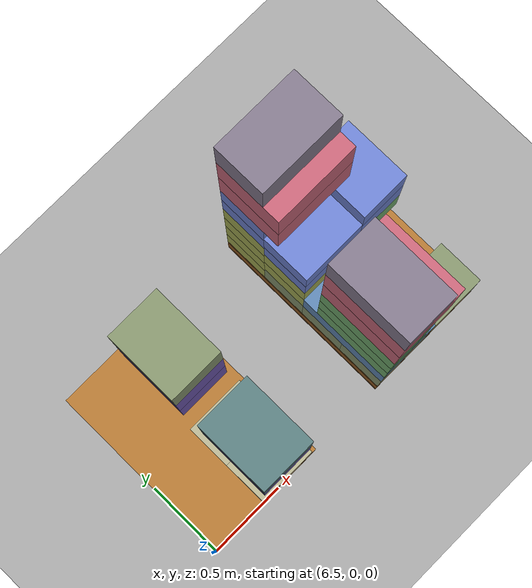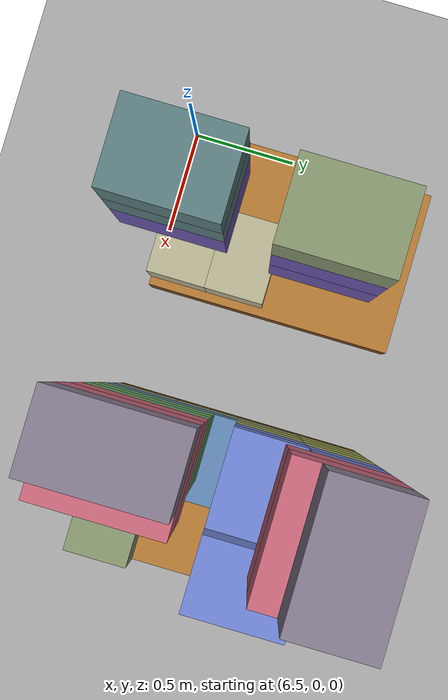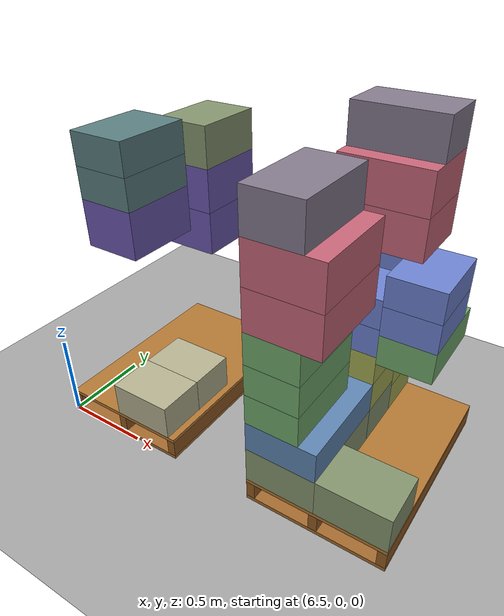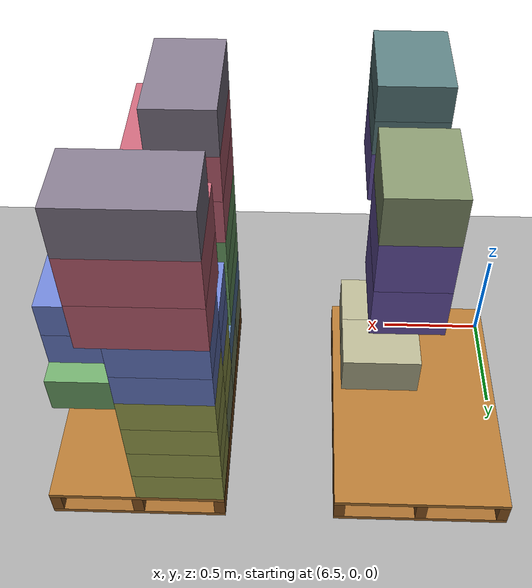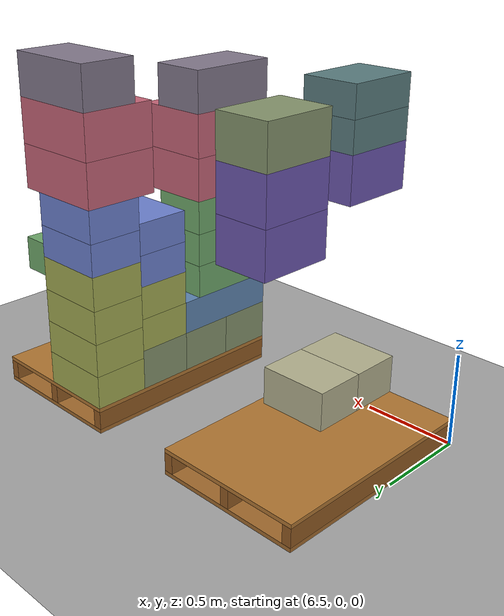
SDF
<sdf version="1.10">
 <world name="pallet_towers">
  <model name="ground_plane">
   <static>true</static>
   <link name="link">
    <collision name="collision">
     <geometry><plane><normal>0 0 1</normal><size>30 30</size></plane></geometry>
     <surface>
      <friction><ode><mu>0.55</mu><mu2>0.55</mu2></ode></friction>
      <bounce><restitution_coefficient>0</restitution_coefficient><threshold>100000</threshold></bounce>
      <contact><ode><kp>1000000</kp><kd>100</kd><max_vel>1</max_vel><min_depth>0.0005</min_depth></ode></contact>
     </surface>
    </collision>
    <visual name="visual">
     <geometry><plane><normal>0 0 1</normal><size>30 30</size></plane></geometry>
     <material><ambient>0.65 0.65 0.65 1</ambient><diffuse>0.65 0.65 0.65 1</diffuse></material>
    </visual>
   </link>
  </model>
  <model name="pallet_06_P06">
   <static>false</static>
   <pose>6.9 0.6 0.002 0 0 0</pose>
   <allow_auto_disable>false</allow_auto_disable>
   <link name="body">
    <inertial>
     <pose>0 0 0.072 0 0 0</pose>
     <mass>25</mass>
     <inertia>
      <ixx>3.07216082</ixx>
      <ixy>0</ixy>
      <ixz>0</ixz>
      <iyy>1.70896776</iyy>
      <iyz>0</iyz>
      <izz>4.63680694</izz>
     </inertia>
    </inertial>
    <collision name="bottom_deck_collision">
     <pose>0 0 0.011 0 0 0</pose>
     <geometry><box><size>0.8 1.2 0.022</size></box></geometry>
     <surface>
      <friction><ode><mu>0.55</mu><mu2>0.55</mu2></ode></friction>
      <bounce><restitution_coefficient>0</restitution_coefficient><threshold>100000</threshold></bounce>
      <contact><ode><kp>1000000</kp><kd>100</kd><max_vel>1</max_vel><min_depth>0.0005</min_depth></ode></contact>
     </surface>
    </collision>
    <visual name="bottom_deck_visual">
     <pose>0 0 0.011 0 0 0</pose>
     <geometry><box><size>0.8 1.2 0.022</size></box></geometry>
     <material>
      <ambient>0.46 0.28 0.10 1</ambient>
      <diffuse>0.64 0.42 0.18 1</diffuse>
      <specular>0.03 0.03 0.03 1</specular>
     </material>
    </visual>
    <collision name="left_stringer_collision">
     <pose>-0.375 0 0.072 0 0 0</pose>
     <geometry><box><size>0.05 1.2 0.1</size></box></geometry>
     <surface>
      <friction><ode><mu>0.55</mu><mu2>0.55</mu2></ode></friction>
      <bounce><restitution_coefficient>0</restitution_coefficient><threshold>100000</threshold></bounce>
      <contact><ode><kp>1000000</kp><kd>100</kd><max_vel>1</max_vel><min_depth>0.0005</min_depth></ode></contact>
     </surface>
    </collision>
    <visual name="left_stringer_visual">
     <pose>-0.375 0 0.072 0 0 0</pose>
     <geometry><box><size>0.05 1.2 0.1</size></box></geometry>
     <material>
      <ambient>0.42 0.25 0.09 1</ambient>
      <diffuse>0.58 0.36 0.14 1</diffuse>
      <specular>0.03 0.03 0.03 1</specular>
     </material>
    </visual>
    <collision name="centre_stringer_collision">
     <pose>0 0 0.072 0 0 0</pose>
     <geometry><box><size>0.05 1.2 0.1</size></box></geometry>
     <surface>
      <friction><ode><mu>0.55</mu><mu2>0.55</mu2></ode></friction>
      <bounce><restitution_coefficient>0</restitution_coefficient><threshold>100000</threshold></bounce>
      <contact><ode><kp>1000000</kp><kd>100</kd><max_vel>1</max_vel><min_depth>0.0005</min_depth></ode></contact>
     </surface>
    </collision>
    <visual name="centre_stringer_visual">
     <pose>0 0 0.072 0 0 0</pose>
     <geometry><box><size>0.05 1.2 0.1</size></box></geometry>
     <material>
      <ambient>0.42 0.25 0.09 1</ambient>
      <diffuse>0.58 0.36 0.14 1</diffuse>
      <specular>0.03 0.03 0.03 1</specular>
     </material>
    </visual>
    <collision name="right_stringer_collision">
     <pose>0.375 0 0.072 0 0 0</pose>
     <geometry><box><size>0.05 1.2 0.1</size></box></geometry>
     <surface>
      <friction><ode><mu>0.55</mu><mu2>0.55</mu2></ode></friction>
      <bounce><restitution_coefficient>0</restitution_coefficient><threshold>100000</threshold></bounce>
      <contact><ode><kp>1000000</kp><kd>100</kd><max_vel>1</max_vel><min_depth>0.0005</min_depth></ode></contact>
     </surface>
    </collision>
    <visual name="right_stringer_visual">
     <pose>0.375 0 0.072 0 0 0</pose>
     <geometry><box><size>0.05 1.2 0.1</size></box></geometry>
     <material>
      <ambient>0.42 0.25 0.09 1</ambient>
      <diffuse>0.58 0.36 0.14 1</diffuse>
      <specular>0.03 0.03 0.03 1</specular>
     </material>
    </visual>
    <collision name="top_deck_collision">
     <pose>0 0 0.133 0 0 0</pose>
     <geometry><box><size>0.8 1.2 0.022</size></box></geometry>
     <surface>
      <friction><ode><mu>0.55</mu><mu2>0.55</mu2></ode></friction>
      <bounce><restitution_coefficient>0</restitution_coefficient><threshold>100000</threshold></bounce>
      <contact><ode><kp>1000000</kp><kd>100</kd><max_vel>1</max_vel><min_depth>0.0005</min_depth></ode></contact>
     </surface>
    </collision>
    <visual name="top_deck_visual">
     <pose>0 0 0.133 0 0 0</pose>
     <geometry><box><size>0.8 1.2 0.022</size></box></geometry>
     <material>
      <ambient>0.50 0.31 0.11 1</ambient>
      <diffuse>0.70 0.47 0.20 1</diffuse>
      <specular>0.03 0.03 0.03 1</specular>
     </material>
    </visual>
   </link>
  </model>
  <model name="box_p06_0002_TOMATO_004_TOMATO">
   <static>false</static>
   <pose>7.07 0.14 0.251 0 0 0</pose>
   <link name="body">
    <inertial>
     <mass>9</mass>
     <inertia><ixx>0.091875</ixx><ixy>0</ixy><ixz>0</ixz><iyy>0.141375</iyy><iyz>0</iyz><izz>0.1671</izz></inertia>
    </inertial>
    <collision name="collision">
     <geometry><box><size>0.38 0.28 0.21</size></box></geometry>
     <surface>
      <friction><ode><mu>0.55</mu><mu2>0.55</mu2></ode></friction>
      <bounce><restitution_coefficient>0</restitution_coefficient><threshold>100000</threshold></bounce>
      <contact><ode><kp>1000000</kp><kd>100</kd><max_vel>1</max_vel><min_depth>0.0005</min_depth></ode></contact>
     </surface>
    </collision>
    <visual name="visual">
     <geometry><box><size>0.38 0.28 0.21</size></box></geometry>
     <material>
      <ambient>0.71372549 0.701960784 0.568627451 1</ambient>
      <diffuse>0.71372549 0.701960784 0.568627451 1</diffuse>
      <specular>0.05 0.05 0.05 1</specular>
     </material>
    </visual>
   </link>
  </model>
  <model name="box_p06_0004_TOMATO_006_TOMATO">
   <static>false</static>
   <pose>7.07 0.42 0.251 0 0 0</pose>
   <link name="body">
    <inertial>
     <mass>9</mass>
     <inertia><ixx>0.091875</ixx><ixy>0</ixy><ixz>0</ixz><iyy>0.141375</iyy><iyz>0</iyz><izz>0.1671</izz></inertia>
    </inertial>
    <collision name="collision">
     <geometry><box><size>0.38 0.28 0.21</size></box></geometry>
     <surface>
      <friction><ode><mu>0.55</mu><mu2>0.55</mu2></ode></friction>
      <bounce><restitution_coefficient>0</restitution_coefficient><threshold>100000</threshold></bounce>
      <contact><ode><kp>1000000</kp><kd>100</kd><max_vel>1</max_vel><min_depth>0.0005</min_depth></ode></contact>
     </surface>
    </collision>
    <visual name="visual">
     <geometry><box><size>0.38 0.28 0.21</size></box></geometry>
     <material>
      <ambient>0.71372549 0.701960784 0.568627451 1</ambient>
      <diffuse>0.71372549 0.701960784 0.568627451 1</diffuse>
      <specular>0.05 0.05 0.05 1</specular>
     </material>
    </visual>
   </link>
  </model>
  <model name="box_p06_0012_OATS_002_OATS">
   <static>false</static>
   <pose>7.05 0.76 1.166 0 0 0</pose>
   <link name="body">
    <inertial>
     <mass>7</mass>
     <inertia>
      <ixx>0.126933333</ixx>
      <ixy>0</ixy>
      <ixz>0</ixz>
      <iyy>0.0861</iyy>
      <iyz>0</iyz>
      <izz>0.145833333</izz>
     </inertia>
    </inertial>
    <collision name="collision">
     <geometry><box><size>0.3 0.4 0.24</size></box></geometry>
     <surface>
      <friction><ode><mu>0.55</mu><mu2>0.55</mu2></ode></friction>
      <bounce><restitution_coefficient>0</restitution_coefficient><threshold>100000</threshold></bounce>
      <contact><ode><kp>1000000</kp><kd>100</kd><max_vel>1</max_vel><min_depth>0.0005</min_depth></ode></contact>
     </surface>
    </collision>
    <visual name="visual">
     <geometry><box><size>0.3 0.4 0.24</size></box></geometry>
     <material>
      <ambient>0.42745098 0.345098039 0.690196078 1</ambient>
      <diffuse>0.42745098 0.345098039 0.690196078 1</diffuse>
      <specular>0.05 0.05 0.05 1</specular>
     </material>
    </visual>
   </link>
  </model>
  <model name="box_p06_0014_OATS_004_OATS">
   <static>false</static>
   <pose>7.05 0.76 1.406 0 0 0</pose>
   <link name="body">
    <inertial>
     <mass>7</mass>
     <inertia>
      <ixx>0.126933333</ixx>
      <ixy>0</ixy>
      <ixz>0</ixz>
      <iyy>0.0861</iyy>
      <iyz>0</iyz>
      <izz>0.145833333</izz>
     </inertia>
    </inertial>
    <collision name="collision">
     <geometry><box><size>0.3 0.4 0.24</size></box></geometry>
     <surface>
      <friction><ode><mu>0.55</mu><mu2>0.55</mu2></ode></friction>
      <bounce><restitution_coefficient>0</restitution_coefficient><threshold>100000</threshold></bounce>
      <contact><ode><kp>1000000</kp><kd>100</kd><max_vel>1</max_vel><min_depth>0.0005</min_depth></ode></contact>
     </surface>
    </collision>
    <visual name="visual">
     <geometry><box><size>0.3 0.4 0.24</size></box></geometry>
     <material>
      <ambient>0.42745098 0.345098039 0.690196078 1</ambient>
      <diffuse>0.42745098 0.345098039 0.690196078 1</diffuse>
      <specular>0.05 0.05 0.05 1</specular>
     </material>
    </visual>
   </link>
  </model>
  <model name="box_p06_0016_OATS_006_OATS">
   <static>false</static>
   <pose>7.05 0.2 1.376 0 0 0</pose>
   <link name="body">
    <inertial>
     <mass>7</mass>
     <inertia>
      <ixx>0.126933333</ixx>
      <ixy>0</ixy>
      <ixz>0</ixz>
      <iyy>0.0861</iyy>
      <iyz>0</iyz>
      <izz>0.145833333</izz>
     </inertia>
    </inertial>
    <collision name="collision">
     <geometry><box><size>0.3 0.4 0.24</size></box></geometry>
     <surface>
      <friction><ode><mu>0.55</mu><mu2>0.55</mu2></ode></friction>
      <bounce><restitution_coefficient>0</restitution_coefficient><threshold>100000</threshold></bounce>
      <contact><ode><kp>1000000</kp><kd>100</kd><max_vel>1</max_vel><min_depth>0.0005</min_depth></ode></contact>
     </surface>
    </collision>
    <visual name="visual">
     <geometry><box><size>0.3 0.4 0.24</size></box></geometry>
     <material>
      <ambient>0.42745098 0.345098039 0.690196078 1</ambient>
      <diffuse>0.42745098 0.345098039 0.690196078 1</diffuse>
      <specular>0.05 0.05 0.05 1</specular>
     </material>
    </visual>
   </link>
  </model>
  <model name="box_p06_0021_CHEESE_005_CHEESE">
   <static>false</static>
   <pose>7.05 0.2 1.576 0 0 0</pose>
   <link name="body">
    <inertial>
     <mass>9.5</mass>
     <inertia>
      <ixx>0.146933333</ixx>
      <ixy>0</ixy>
      <ixz>0</ixz>
      <iyy>0.0915166667</iyy>
      <iyz>0</iyz>
      <izz>0.197916667</izz>
     </inertia>
    </inertial>
    <collision name="collision">
     <geometry><box><size>0.3 0.4 0.16</size></box></geometry>
     <surface>
      <friction><ode><mu>0.55</mu><mu2>0.55</mu2></ode></friction>
      <bounce><restitution_coefficient>0</restitution_coefficient><threshold>100000</threshold></bounce>
      <contact><ode><kp>1000000</kp><kd>100</kd><max_vel>1</max_vel><min_depth>0.0005</min_depth></ode></contact>
     </surface>
    </collision>
    <visual name="visual">
     <geometry><box><size>0.3 0.4 0.16</size></box></geometry>
     <material>
      <ambient>0.356862745 0.494117647 0.501960784 1</ambient>
      <diffuse>0.356862745 0.494117647 0.501960784 1</diffuse>
      <specular>0.05 0.05 0.05 1</specular>
     </material>
    </visual>
   </link>
  </model>
  <model name="box_p06_0022_CHEESE_006_CHEESE">
   <static>false</static>
   <pose>7.05 0.2 1.736 0 0 0</pose>
   <link name="body">
    <inertial>
     <mass>9.5</mass>
     <inertia>
      <ixx>0.146933333</ixx>
      <ixy>0</ixy>
      <ixz>0</ixz>
      <iyy>0.0915166667</iyy>
      <iyz>0</iyz>
      <izz>0.197916667</izz>
     </inertia>
    </inertial>
    <collision name="collision">
     <geometry><box><size>0.3 0.4 0.16</size></box></geometry>
     <surface>
      <friction><ode><mu>0.55</mu><mu2>0.55</mu2></ode></friction>
      <bounce><restitution_coefficient>0</restitution_coefficient><threshold>100000</threshold></bounce>
      <contact><ode><kp>1000000</kp><kd>100</kd><max_vel>1</max_vel><min_depth>0.0005</min_depth></ode></contact>
     </surface>
    </collision>
    <visual name="visual">
     <geometry><box><size>0.3 0.4 0.16</size></box></geometry>
     <material>
      <ambient>0.356862745 0.494117647 0.501960784 1</ambient>
      <diffuse>0.356862745 0.494117647 0.501960784 1</diffuse>
      <specular>0.05 0.05 0.05 1</specular>
     </material>
    </visual>
   </link>
  </model>
  <model name="box_p06_0023_FRZVEG_001_FRZVEG">
   <static>false</static>
   <pose>7.05 0.76 1.636 0 0 0</pose>
   <link name="body">
    <inertial>
     <mass>7.5</mass>
     <inertia><ixx>0.13025</ixx><ixy>0</ixy><ixz>0</ixz><iyy>0.0865</iyy><iyz>0</iyz><izz>0.15625</izz></inertia>
    </inertial>
    <collision name="collision">
     <geometry><box><size>0.3 0.4 0.22</size></box></geometry>
     <surface>
      <friction><ode><mu>0.55</mu><mu2>0.55</mu2></ode></friction>
      <bounce><restitution_coefficient>0</restitution_coefficient><threshold>100000</threshold></bounce>
      <contact><ode><kp>1000000</kp><kd>100</kd><max_vel>1</max_vel><min_depth>0.0005</min_depth></ode></contact>
     </surface>
    </collision>
    <visual name="visual">
     <geometry><box><size>0.3 0.4 0.22</size></box></geometry>
     <material>
      <ambient>0.525490196 0.584313725 0.431372549 1</ambient>
      <diffuse>0.525490196 0.584313725 0.431372549 1</diffuse>
      <specular>0.05 0.05 0.05 1</specular>
     </material>
    </visual>
   </link>
  </model>
  <model name="pallet_07_P07">
   <static>false</static>
   <pose>8.2 0.6 0.002 0 0 0</pose>
   <allow_auto_disable>false</allow_auto_disable>
   <link name="body">
    <inertial>
     <pose>0 0 0.072 0 0 0</pose>
     <mass>25</mass>
     <inertia>
      <ixx>3.07216082</ixx>
      <ixy>0</ixy>
      <ixz>0</ixz>
      <iyy>1.70896776</iyy>
      <iyz>0</iyz>
      <izz>4.63680694</izz>
     </inertia>
    </inertial>
    <collision name="bottom_deck_collision">
     <pose>0 0 0.011 0 0 0</pose>
     <geometry><box><size>0.8 1.2 0.022</size></box></geometry>
     <surface>
      <friction><ode><mu>0.55</mu><mu2>0.55</mu2></ode></friction>
      <bounce><restitution_coefficient>0</restitution_coefficient><threshold>100000</threshold></bounce>
      <contact><ode><kp>1000000</kp><kd>100</kd><max_vel>1</max_vel><min_depth>0.0005</min_depth></ode></contact>
     </surface>
    </collision>
    <visual name="bottom_deck_visual">
     <pose>0 0 0.011 0 0 0</pose>
     <geometry><box><size>0.8 1.2 0.022</size></box></geometry>
     <material>
      <ambient>0.46 0.28 0.10 1</ambient>
      <diffuse>0.64 0.42 0.18 1</diffuse>
      <specular>0.03 0.03 0.03 1</specular>
     </material>
    </visual>
    <collision name="left_stringer_collision">
     <pose>-0.375 0 0.072 0 0 0</pose>
     <geometry><box><size>0.05 1.2 0.1</size></box></geometry>
     <surface>
      <friction><ode><mu>0.55</mu><mu2>0.55</mu2></ode></friction>
      <bounce><restitution_coefficient>0</restitution_coefficient><threshold>100000</threshold></bounce>
      <contact><ode><kp>1000000</kp><kd>100</kd><max_vel>1</max_vel><min_depth>0.0005</min_depth></ode></contact>
     </surface>
    </collision>
    <visual name="left_stringer_visual">
     <pose>-0.375 0 0.072 0 0 0</pose>
     <geometry><box><size>0.05 1.2 0.1</size></box></geometry>
     <material>
      <ambient>0.42 0.25 0.09 1</ambient>
      <diffuse>0.58 0.36 0.14 1</diffuse>
      <specular>0.03 0.03 0.03 1</specular>
     </material>
    </visual>
    <collision name="centre_stringer_collision">
     <pose>0 0 0.072 0 0 0</pose>
     <geometry><box><size>0.05 1.2 0.1</size></box></geometry>
     <surface>
      <friction><ode><mu>0.55</mu><mu2>0.55</mu2></ode></friction>
      <bounce><restitution_coefficient>0</restitution_coefficient><threshold>100000</threshold></bounce>
      <contact><ode><kp>1000000</kp><kd>100</kd><max_vel>1</max_vel><min_depth>0.0005</min_depth></ode></contact>
     </surface>
    </collision>
    <visual name="centre_stringer_visual">
     <pose>0 0 0.072 0 0 0</pose>
     <geometry><box><size>0.05 1.2 0.1</size></box></geometry>
     <material>
      <ambient>0.42 0.25 0.09 1</ambient>
      <diffuse>0.58 0.36 0.14 1</diffuse>
      <specular>0.03 0.03 0.03 1</specular>
     </material>
    </visual>
    <collision name="right_stringer_collision">
     <pose>0.375 0 0.072 0 0 0</pose>
     <geometry><box><size>0.05 1.2 0.1</size></box></geometry>
     <surface>
      <friction><ode><mu>0.55</mu><mu2>0.55</mu2></ode></friction>
      <bounce><restitution_coefficient>0</restitution_coefficient><threshold>100000</threshold></bounce>
      <contact><ode><kp>1000000</kp><kd>100</kd><max_vel>1</max_vel><min_depth>0.0005</min_depth></ode></contact>
     </surface>
    </collision>
    <visual name="right_stringer_visual">
     <pose>0.375 0 0.072 0 0 0</pose>
     <geometry><box><size>0.05 1.2 0.1</size></box></geometry>
     <material>
      <ambient>0.42 0.25 0.09 1</ambient>
      <diffuse>0.58 0.36 0.14 1</diffuse>
      <specular>0.03 0.03 0.03 1</specular>
     </material>
    </visual>
    <collision name="top_deck_collision">
     <pose>0 0 0.133 0 0 0</pose>
     <geometry><box><size>0.8 1.2 0.022</size></box></geometry>
     <surface>
      <friction><ode><mu>0.55</mu><mu2>0.55</mu2></ode></friction>
      <bounce><restitution_coefficient>0</restitution_coefficient><threshold>100000</threshold></bounce>
      <contact><ode><kp>1000000</kp><kd>100</kd><max_vel>1</max_vel><min_depth>0.0005</min_depth></ode></contact>
     </surface>
    </collision>
    <visual name="top_deck_visual">
     <pose>0 0 0.133 0 0 0</pose>
     <geometry><box><size>0.8 1.2 0.022</size></box></geometry>
     <material>
      <ambient>0.50 0.31 0.11 1</ambient>
      <diffuse>0.70 0.47 0.20 1</diffuse>
      <specular>0.03 0.03 0.03 1</specular>
     </material>
    </visual>
   </link>
  </model>
  <model name="box_p07_0001_FRZVEG_002_FRZVEG">
   <static>false</static>
   <pose>8 0.15 0.256 0 0 0</pose>
   <link name="body">
    <inertial>
     <mass>7.5</mass>
     <inertia><ixx>0.0865</ixx><ixy>0</ixy><ixz>0</ixz><iyy>0.13025</iyy><iyz>0</iyz><izz>0.15625</izz></inertia>
    </inertial>
    <collision name="collision">
     <geometry><box><size>0.4 0.3 0.22</size></box></geometry>
     <surface>
      <friction><ode><mu>0.55</mu><mu2>0.55</mu2></ode></friction>
      <bounce><restitution_coefficient>0</restitution_coefficient><threshold>100000</threshold></bounce>
      <contact><ode><kp>1000000</kp><kd>100</kd><max_vel>1</max_vel><min_depth>0.0005</min_depth></ode></contact>
     </surface>
    </collision>
    <visual name="visual">
     <geometry><box><size>0.4 0.3 0.22</size></box></geometry>
     <material>
      <ambient>0.525490196 0.584313725 0.431372549 1</ambient>
      <diffuse>0.525490196 0.584313725 0.431372549 1</diffuse>
      <specular>0.05 0.05 0.05 1</specular>
     </material>
    </visual>
   </link>
  </model>
  <model name="box_p07_0002_FRZVEG_003_FRZVEG">
   <static>false</static>
   <pose>8.4 0.15 0.256 0 0 0</pose>
   <link name="body">
    <inertial>
     <mass>7.5</mass>
     <inertia><ixx>0.0865</ixx><ixy>0</ixy><ixz>0</ixz><iyy>0.13025</iyy><iyz>0</iyz><izz>0.15625</izz></inertia>
    </inertial>
    <collision name="collision">
     <geometry><box><size>0.4 0.3 0.22</size></box></geometry>
     <surface>
      <friction><ode><mu>0.55</mu><mu2>0.55</mu2></ode></friction>
      <bounce><restitution_coefficient>0</restitution_coefficient><threshold>100000</threshold></bounce>
      <contact><ode><kp>1000000</kp><kd>100</kd><max_vel>1</max_vel><min_depth>0.0005</min_depth></ode></contact>
     </surface>
    </collision>
    <visual name="visual">
     <geometry><box><size>0.4 0.3 0.22</size></box></geometry>
     <material>
      <ambient>0.525490196 0.584313725 0.431372549 1</ambient>
      <diffuse>0.525490196 0.584313725 0.431372549 1</diffuse>
      <specular>0.05 0.05 0.05 1</specular>
     </material>
    </visual>
   </link>
  </model>
  <model name="box_p07_0003_FRZVEG_004_FRZVEG">
   <static>false</static>
   <pose>8 0.45 0.256 0 0 0</pose>
   <link name="body">
    <inertial>
     <mass>7.5</mass>
     <inertia><ixx>0.0865</ixx><ixy>0</ixy><ixz>0</ixz><iyy>0.13025</iyy><iyz>0</iyz><izz>0.15625</izz></inertia>
    </inertial>
    <collision name="collision">
     <geometry><box><size>0.4 0.3 0.22</size></box></geometry>
     <surface>
      <friction><ode><mu>0.55</mu><mu2>0.55</mu2></ode></friction>
      <bounce><restitution_coefficient>0</restitution_coefficient><threshold>100000</threshold></bounce>
      <contact><ode><kp>1000000</kp><kd>100</kd><max_vel>1</max_vel><min_depth>0.0005</min_depth></ode></contact>
     </surface>
    </collision>
    <visual name="visual">
     <geometry><box><size>0.4 0.3 0.22</size></box></geometry>
     <material>
      <ambient>0.525490196 0.584313725 0.431372549 1</ambient>
      <diffuse>0.525490196 0.584313725 0.431372549 1</diffuse>
      <specular>0.05 0.05 0.05 1</specular>
     </material>
    </visual>
   </link>
  </model>
  <model name="box_p07_0005_FRZVEG_006_FRZVEG">
   <static>false</static>
   <pose>8 0.75 0.256 0 0 0</pose>
   <link name="body">
    <inertial>
     <mass>7.5</mass>
     <inertia><ixx>0.0865</ixx><ixy>0</ixy><ixz>0</ixz><iyy>0.13025</iyy><iyz>0</iyz><izz>0.15625</izz></inertia>
    </inertial>
    <collision name="collision">
     <geometry><box><size>0.4 0.3 0.22</size></box></geometry>
     <surface>
      <friction><ode><mu>0.55</mu><mu2>0.55</mu2></ode></friction>
      <bounce><restitution_coefficient>0</restitution_coefficient><threshold>100000</threshold></bounce>
      <contact><ode><kp>1000000</kp><kd>100</kd><max_vel>1</max_vel><min_depth>0.0005</min_depth></ode></contact>
     </surface>
    </collision>
    <visual name="visual">
     <geometry><box><size>0.4 0.3 0.22</size></box></geometry>
     <material>
      <ambient>0.525490196 0.584313725 0.431372549 1</ambient>
      <diffuse>0.525490196 0.584313725 0.431372549 1</diffuse>
      <specular>0.05 0.05 0.05 1</specular>
     </material>
    </visual>
   </link>
  </model>
  <model name="box_p07_0010_PIZZA_005_PIZZA">
   <static>false</static>
   <pose>8 0.3 0.456 0 0 0</pose>
   <link name="body">
    <inertial>
     <mass>6</mass>
     <inertia><ixx>0.1962</ixx><ixy>0</ixy><ixz>0</ixz><iyy>0.0962</iyy><iyz>0</iyz><izz>0.26</izz></inertia>
    </inertial>
    <collision name="collision">
     <geometry><box><size>0.4 0.6 0.18</size></box></geometry>
     <surface>
      <friction><ode><mu>0.55</mu><mu2>0.55</mu2></ode></friction>
      <bounce><restitution_coefficient>0</restitution_coefficient><threshold>100000</threshold></bounce>
      <contact><ode><kp>1000000</kp><kd>100</kd><max_vel>1</max_vel><min_depth>0.0005</min_depth></ode></contact>
     </surface>
    </collision>
    <visual name="visual">
     <geometry><box><size>0.4 0.6 0.18</size></box></geometry>
     <material>
      <ambient>0.37254902 0.525490196 0.701960784 1</ambient>
      <diffuse>0.37254902 0.525490196 0.701960784 1</diffuse>
      <specular>0.05 0.05 0.05 1</specular>
     </material>
    </visual>
   </link>
  </model>
  <model name="box_p07_0012_SALMON_001_SALMON">
   <static>false</static>
   <pose>8 1.05 0.236 0 0 0</pose>
   <link name="body">
    <inertial>
     <mass>8.5</mass>
     <inertia>
      <ixx>0.0867</ixx>
      <ixy>0</ixy>
      <ixz>0</ixz>
      <iyy>0.136283333</iyy>
      <iyz>0</iyz>
      <izz>0.177083333</izz>
     </inertia>
    </inertial>
    <collision name="collision">
     <geometry><box><size>0.4 0.3 0.18</size></box></geometry>
     <surface>
      <friction><ode><mu>0.55</mu><mu2>0.55</mu2></ode></friction>
      <bounce><restitution_coefficient>0</restitution_coefficient><threshold>100000</threshold></bounce>
      <contact><ode><kp>1000000</kp><kd>100</kd><max_vel>1</max_vel><min_depth>0.0005</min_depth></ode></contact>
     </surface>
    </collision>
    <visual name="visual">
     <geometry><box><size>0.4 0.3 0.18</size></box></geometry>
     <material>
      <ambient>0.647058824 0.678431373 0.329411765 1</ambient>
      <diffuse>0.647058824 0.678431373 0.329411765 1</diffuse>
      <specular>0.05 0.05 0.05 1</specular>
     </material>
    </visual>
   </link>
  </model>
  <model name="box_p07_0013_SALMON_002_SALMON">
   <static>false</static>
   <pose>8 1.05 0.416 0 0 0</pose>
   <link name="body">
    <inertial>
     <mass>8.5</mass>
     <inertia>
      <ixx>0.0867</ixx>
      <ixy>0</ixy>
      <ixz>0</ixz>
      <iyy>0.136283333</iyy>
      <iyz>0</iyz>
      <izz>0.177083333</izz>
     </inertia>
    </inertial>
    <collision name="collision">
     <geometry><box><size>0.4 0.3 0.18</size></box></geometry>
     <surface>
      <friction><ode><mu>0.55</mu><mu2>0.55</mu2></ode></friction>
      <bounce><restitution_coefficient>0</restitution_coefficient><threshold>100000</threshold></bounce>
      <contact><ode><kp>1000000</kp><kd>100</kd><max_vel>1</max_vel><min_depth>0.0005</min_depth></ode></contact>
     </surface>
    </collision>
    <visual name="visual">
     <geometry><box><size>0.4 0.3 0.18</size></box></geometry>
     <material>
      <ambient>0.647058824 0.678431373 0.329411765 1</ambient>
      <diffuse>0.647058824 0.678431373 0.329411765 1</diffuse>
      <specular>0.05 0.05 0.05 1</specular>
     </material>
    </visual>
   </link>
  </model>
  <model name="box_p07_0014_SALMON_003_SALMON">
   <static>false</static>
   <pose>8 0.75 0.456 0 0 0</pose>
   <link name="body">
    <inertial>
     <mass>8.5</mass>
     <inertia>
      <ixx>0.0867</ixx>
      <ixy>0</ixy>
      <ixz>0</ixz>
      <iyy>0.136283333</iyy>
      <iyz>0</iyz>
      <izz>0.177083333</izz>
     </inertia>
    </inertial>
    <collision name="collision">
     <geometry><box><size>0.4 0.3 0.18</size></box></geometry>
     <surface>
      <friction><ode><mu>0.55</mu><mu2>0.55</mu2></ode></friction>
      <bounce><restitution_coefficient>0</restitution_coefficient><threshold>100000</threshold></bounce>
      <contact><ode><kp>1000000</kp><kd>100</kd><max_vel>1</max_vel><min_depth>0.0005</min_depth></ode></contact>
     </surface>
    </collision>
    <visual name="visual">
     <geometry><box><size>0.4 0.3 0.18</size></box></geometry>
     <material>
      <ambient>0.647058824 0.678431373 0.329411765 1</ambient>
      <diffuse>0.647058824 0.678431373 0.329411765 1</diffuse>
      <specular>0.05 0.05 0.05 1</specular>
     </material>
    </visual>
   </link>
  </model>
  <model name="box_p07_0015_SALMON_004_SALMON">
   <static>false</static>
   <pose>8 1.05 0.596 0 0 0</pose>
   <link name="body">
    <inertial>
     <mass>8.5</mass>
     <inertia>
      <ixx>0.0867</ixx>
      <ixy>0</ixy>
      <ixz>0</ixz>
      <iyy>0.136283333</iyy>
      <iyz>0</iyz>
      <izz>0.177083333</izz>
     </inertia>
    </inertial>
    <collision name="collision">
     <geometry><box><size>0.4 0.3 0.18</size></box></geometry>
     <surface>
      <friction><ode><mu>0.55</mu><mu2>0.55</mu2></ode></friction>
      <bounce><restitution_coefficient>0</restitution_coefficient><threshold>100000</threshold></bounce>
      <contact><ode><kp>1000000</kp><kd>100</kd><max_vel>1</max_vel><min_depth>0.0005</min_depth></ode></contact>
     </surface>
    </collision>
    <visual name="visual">
     <geometry><box><size>0.4 0.3 0.18</size></box></geometry>
     <material>
      <ambient>0.647058824 0.678431373 0.329411765 1</ambient>
      <diffuse>0.647058824 0.678431373 0.329411765 1</diffuse>
      <specular>0.05 0.05 0.05 1</specular>
     </material>
    </visual>
   </link>
  </model>
  <model name="box_p07_0016_SALMON_005_SALMON">
   <static>false</static>
   <pose>8 0.75 0.636 0 0 0</pose>
   <link name="body">
    <inertial>
     <mass>8.5</mass>
     <inertia>
      <ixx>0.0867</ixx>
      <ixy>0</ixy>
      <ixz>0</ixz>
      <iyy>0.136283333</iyy>
      <iyz>0</iyz>
      <izz>0.177083333</izz>
     </inertia>
    </inertial>
    <collision name="collision">
     <geometry><box><size>0.4 0.3 0.18</size></box></geometry>
     <surface>
      <friction><ode><mu>0.55</mu><mu2>0.55</mu2></ode></friction>
      <bounce><restitution_coefficient>0</restitution_coefficient><threshold>100000</threshold></bounce>
      <contact><ode><kp>1000000</kp><kd>100</kd><max_vel>1</max_vel><min_depth>0.0005</min_depth></ode></contact>
     </surface>
    </collision>
    <visual name="visual">
     <geometry><box><size>0.4 0.3 0.18</size></box></geometry>
     <material>
      <ambient>0.647058824 0.678431373 0.329411765 1</ambient>
      <diffuse>0.647058824 0.678431373 0.329411765 1</diffuse>
      <specular>0.05 0.05 0.05 1</specular>
     </material>
    </visual>
   </link>
  </model>
  <model name="box_p07_0017_SALMON_006_SALMON">
   <static>false</static>
   <pose>8 1.05 0.776 0 0 0</pose>
   <link name="body">
    <inertial>
     <mass>8.5</mass>
     <inertia>
      <ixx>0.0867</ixx>
      <ixy>0</ixy>
      <ixz>0</ixz>
      <iyy>0.136283333</iyy>
      <iyz>0</iyz>
      <izz>0.177083333</izz>
     </inertia>
    </inertial>
    <collision name="collision">
     <geometry><box><size>0.4 0.3 0.18</size></box></geometry>
     <surface>
      <friction><ode><mu>0.55</mu><mu2>0.55</mu2></ode></friction>
      <bounce><restitution_coefficient>0</restitution_coefficient><threshold>100000</threshold></bounce>
      <contact><ode><kp>1000000</kp><kd>100</kd><max_vel>1</max_vel><min_depth>0.0005</min_depth></ode></contact>
     </surface>
    </collision>
    <visual name="visual">
     <geometry><box><size>0.4 0.3 0.18</size></box></geometry>
     <material>
      <ambient>0.647058824 0.678431373 0.329411765 1</ambient>
      <diffuse>0.647058824 0.678431373 0.329411765 1</diffuse>
      <specular>0.05 0.05 0.05 1</specular>
     </material>
    </visual>
   </link>
  </model>
  <model name="box_p07_0018_CHICKEN_001_CHICKEN">
   <static>false</static>
   <pose>7.95 0.25 0.636 0 0 0</pose>
   <link name="body">
    <inertial>
     <mass>10</mass>
     <inertia>
      <ixx>0.235333333</ixx>
      <ixy>0</ixy>
      <ixz>0</ixz>
      <iyy>0.102</iyy>
      <iyz>0</iyz>
      <izz>0.283333333</izz>
     </inertia>
    </inertial>
    <collision name="collision">
     <geometry><box><size>0.3 0.5 0.18</size></box></geometry>
     <surface>
      <friction><ode><mu>0.55</mu><mu2>0.55</mu2></ode></friction>
      <bounce><restitution_coefficient>0</restitution_coefficient><threshold>100000</threshold></bounce>
      <contact><ode><kp>1000000</kp><kd>100</kd><max_vel>1</max_vel><min_depth>0.0005</min_depth></ode></contact>
     </surface>
    </collision>
    <visual name="visual">
     <geometry><box><size>0.3 0.5 0.18</size></box></geometry>
     <material>
      <ambient>0.439215686 0.666666667 0.423529412 1</ambient>
      <diffuse>0.439215686 0.666666667 0.423529412 1</diffuse>
      <specular>0.05 0.05 0.05 1</specular>
     </material>
    </visual>
   </link>
  </model>
  <model name="box_p07_0019_CHICKEN_002_CHICKEN">
   <static>false</static>
   <pose>7.95 0.25 0.816 0 0 0</pose>
   <link name="body">
    <inertial>
     <mass>10</mass>
     <inertia>
      <ixx>0.235333333</ixx>
      <ixy>0</ixy>
      <ixz>0</ixz>
      <iyy>0.102</iyy>
      <iyz>0</iyz>
      <izz>0.283333333</izz>
     </inertia>
    </inertial>
    <collision name="collision">
     <geometry><box><size>0.3 0.5 0.18</size></box></geometry>
     <surface>
      <friction><ode><mu>0.55</mu><mu2>0.55</mu2></ode></friction>
      <bounce><restitution_coefficient>0</restitution_coefficient><threshold>100000</threshold></bounce>
      <contact><ode><kp>1000000</kp><kd>100</kd><max_vel>1</max_vel><min_depth>0.0005</min_depth></ode></contact>
     </surface>
    </collision>
    <visual name="visual">
     <geometry><box><size>0.3 0.5 0.18</size></box></geometry>
     <material>
      <ambient>0.439215686 0.666666667 0.423529412 1</ambient>
      <diffuse>0.439215686 0.666666667 0.423529412 1</diffuse>
      <specular>0.05 0.05 0.05 1</specular>
     </material>
    </visual>
   </link>
  </model>
  <model name="box_p07_0020_CHICKEN_003_CHICKEN">
   <static>false</static>
   <pose>8.35 0.85 0.776 0 0 0</pose>
   <link name="body">
    <inertial>
     <mass>10</mass>
     <inertia>
      <ixx>0.235333333</ixx>
      <ixy>0</ixy>
      <ixz>0</ixz>
      <iyy>0.102</iyy>
      <iyz>0</iyz>
      <izz>0.283333333</izz>
     </inertia>
    </inertial>
    <collision name="collision">
     <geometry><box><size>0.3 0.5 0.18</size></box></geometry>
     <surface>
      <friction><ode><mu>0.55</mu><mu2>0.55</mu2></ode></friction>
      <bounce><restitution_coefficient>0</restitution_coefficient><threshold>100000</threshold></bounce>
      <contact><ode><kp>1000000</kp><kd>100</kd><max_vel>1</max_vel><min_depth>0.0005</min_depth></ode></contact>
     </surface>
    </collision>
    <visual name="visual">
     <geometry><box><size>0.3 0.5 0.18</size></box></geometry>
     <material>
      <ambient>0.439215686 0.666666667 0.423529412 1</ambient>
      <diffuse>0.439215686 0.666666667 0.423529412 1</diffuse>
      <specular>0.05 0.05 0.05 1</specular>
     </material>
    </visual>
   </link>
  </model>
  <model name="box_p07_0022_CHICKEN_005_CHICKEN">
   <static>false</static>
   <pose>7.95 0.25 0.996 0 0 0</pose>
   <link name="body">
    <inertial>
     <mass>10</mass>
     <inertia>
      <ixx>0.235333333</ixx>
      <ixy>0</ixy>
      <ixz>0</ixz>
      <iyy>0.102</iyy>
      <iyz>0</iyz>
      <izz>0.283333333</izz>
     </inertia>
    </inertial>
    <collision name="collision">
     <geometry><box><size>0.3 0.5 0.18</size></box></geometry>
     <surface>
      <friction><ode><mu>0.55</mu><mu2>0.55</mu2></ode></friction>
      <bounce><restitution_coefficient>0</restitution_coefficient><threshold>100000</threshold></bounce>
      <contact><ode><kp>1000000</kp><kd>100</kd><max_vel>1</max_vel><min_depth>0.0005</min_depth></ode></contact>
     </surface>
    </collision>
    <visual name="visual">
     <geometry><box><size>0.3 0.5 0.18</size></box></geometry>
     <material>
      <ambient>0.439215686 0.666666667 0.423529412 1</ambient>
      <diffuse>0.439215686 0.666666667 0.423529412 1</diffuse>
      <specular>0.05 0.05 0.05 1</specular>
     </material>
    </visual>
   </link>
  </model>
  <model name="box_p07_0024_BEEF_001_BEEF">
   <static>false</static>
   <pose>8 0.75 0.811 0 0 0</pose>
   <link name="body">
    <inertial>
     <mass>12</mass>
     <inertia><ixx>0.1189</ixx><ixy>0</ixy><ixz>0</ixz><iyy>0.1889</iyy><iyz>0</iyz><izz>0.25</izz></inertia>
    </inertial>
    <collision name="collision">
     <geometry><box><size>0.4 0.3 0.17</size></box></geometry>
     <surface>
      <friction><ode><mu>0.55</mu><mu2>0.55</mu2></ode></friction>
      <bounce><restitution_coefficient>0</restitution_coefficient><threshold>100000</threshold></bounce>
      <contact><ode><kp>1000000</kp><kd>100</kd><max_vel>1</max_vel><min_depth>0.0005</min_depth></ode></contact>
     </surface>
    </collision>
    <visual name="visual">
     <geometry><box><size>0.4 0.3 0.17</size></box></geometry>
     <material>
      <ambient>0.431372549 0.51372549 0.823529412 1</ambient>
      <diffuse>0.431372549 0.51372549 0.823529412 1</diffuse>
      <specular>0.05 0.05 0.05 1</specular>
     </material>
    </visual>
   </link>
  </model>
  <model name="box_p07_0025_BEEF_002_BEEF">
   <static>false</static>
   <pose>8 0.75 0.981 0 0 0</pose>
   <link name="body">
    <inertial>
     <mass>12</mass>
     <inertia><ixx>0.1189</ixx><ixy>0</ixy><ixz>0</ixz><iyy>0.1889</iyy><iyz>0</iyz><izz>0.25</izz></inertia>
    </inertial>
    <collision name="collision">
     <geometry><box><size>0.4 0.3 0.17</size></box></geometry>
     <surface>
      <friction><ode><mu>0.55</mu><mu2>0.55</mu2></ode></friction>
      <bounce><restitution_coefficient>0</restitution_coefficient><threshold>100000</threshold></bounce>
      <contact><ode><kp>1000000</kp><kd>100</kd><max_vel>1</max_vel><min_depth>0.0005</min_depth></ode></contact>
     </surface>
    </collision>
    <visual name="visual">
     <geometry><box><size>0.4 0.3 0.17</size></box></geometry>
     <material>
      <ambient>0.431372549 0.51372549 0.823529412 1</ambient>
      <diffuse>0.431372549 0.51372549 0.823529412 1</diffuse>
      <specular>0.05 0.05 0.05 1</specular>
     </material>
    </visual>
   </link>
  </model>
  <model name="box_p07_0026_BEEF_003_BEEF">
   <static>false</static>
   <pose>8 1.05 0.951 0 0 0</pose>
   <link name="body">
    <inertial>
     <mass>12</mass>
     <inertia><ixx>0.1189</ixx><ixy>0</ixy><ixz>0</ixz><iyy>0.1889</iyy><iyz>0</iyz><izz>0.25</izz></inertia>
    </inertial>
    <collision name="collision">
     <geometry><box><size>0.4 0.3 0.17</size></box></geometry>
     <surface>
      <friction><ode><mu>0.55</mu><mu2>0.55</mu2></ode></friction>
      <bounce><restitution_coefficient>0</restitution_coefficient><threshold>100000</threshold></bounce>
      <contact><ode><kp>1000000</kp><kd>100</kd><max_vel>1</max_vel><min_depth>0.0005</min_depth></ode></contact>
     </surface>
    </collision>
    <visual name="visual">
     <geometry><box><size>0.4 0.3 0.17</size></box></geometry>
     <material>
      <ambient>0.431372549 0.51372549 0.823529412 1</ambient>
      <diffuse>0.431372549 0.51372549 0.823529412 1</diffuse>
      <specular>0.05 0.05 0.05 1</specular>
     </material>
    </visual>
   </link>
  </model>
  <model name="box_p07_0027_BEEF_004_BEEF">
   <static>false</static>
   <pose>8 1.05 1.121 0 0 0</pose>
   <link name="body">
    <inertial>
     <mass>12</mass>
     <inertia><ixx>0.1189</ixx><ixy>0</ixy><ixz>0</ixz><iyy>0.1889</iyy><iyz>0</iyz><izz>0.25</izz></inertia>
    </inertial>
    <collision name="collision">
     <geometry><box><size>0.4 0.3 0.17</size></box></geometry>
     <surface>
      <friction><ode><mu>0.55</mu><mu2>0.55</mu2></ode></friction>
      <bounce><restitution_coefficient>0</restitution_coefficient><threshold>100000</threshold></bounce>
      <contact><ode><kp>1000000</kp><kd>100</kd><max_vel>1</max_vel><min_depth>0.0005</min_depth></ode></contact>
     </surface>
    </collision>
    <visual name="visual">
     <geometry><box><size>0.4 0.3 0.17</size></box></geometry>
     <material>
      <ambient>0.431372549 0.51372549 0.823529412 1</ambient>
      <diffuse>0.431372549 0.51372549 0.823529412 1</diffuse>
      <specular>0.05 0.05 0.05 1</specular>
     </material>
    </visual>
   </link>
  </model>
  <model name="box_p07_0028_BEEF_005_BEEF">
   <static>false</static>
   <pose>8.35 0.8 0.951 0 0 0</pose>
   <link name="body">
    <inertial>
     <mass>12</mass>
     <inertia><ixx>0.1889</ixx><ixy>0</ixy><ixz>0</ixz><iyy>0.1189</iyy><iyz>0</iyz><izz>0.25</izz></inertia>
    </inertial>
    <collision name="collision">
     <geometry><box><size>0.3 0.4 0.17</size></box></geometry>
     <surface>
      <friction><ode><mu>0.55</mu><mu2>0.55</mu2></ode></friction>
      <bounce><restitution_coefficient>0</restitution_coefficient><threshold>100000</threshold></bounce>
      <contact><ode><kp>1000000</kp><kd>100</kd><max_vel>1</max_vel><min_depth>0.0005</min_depth></ode></contact>
     </surface>
    </collision>
    <visual name="visual">
     <geometry><box><size>0.3 0.4 0.17</size></box></geometry>
     <material>
      <ambient>0.431372549 0.51372549 0.823529412 1</ambient>
      <diffuse>0.431372549 0.51372549 0.823529412 1</diffuse>
      <specular>0.05 0.05 0.05 1</specular>
     </material>
    </visual>
   </link>
  </model>
  <model name="box_p07_0029_BEEF_006_BEEF">
   <static>false</static>
   <pose>8.35 0.8 1.121 0 0 0</pose>
   <link name="body">
    <inertial>
     <mass>12</mass>
     <inertia><ixx>0.1889</ixx><ixy>0</ixy><ixz>0</ixz><iyy>0.1189</iyy><iyz>0</iyz><izz>0.25</izz></inertia>
    </inertial>
    <collision name="collision">
     <geometry><box><size>0.3 0.4 0.17</size></box></geometry>
     <surface>
      <friction><ode><mu>0.55</mu><mu2>0.55</mu2></ode></friction>
      <bounce><restitution_coefficient>0</restitution_coefficient><threshold>100000</threshold></bounce>
      <contact><ode><kp>1000000</kp><kd>100</kd><max_vel>1</max_vel><min_depth>0.0005</min_depth></ode></contact>
     </surface>
    </collision>
    <visual name="visual">
     <geometry><box><size>0.3 0.4 0.17</size></box></geometry>
     <material>
      <ambient>0.431372549 0.51372549 0.823529412 1</ambient>
      <diffuse>0.431372549 0.51372549 0.823529412 1</diffuse>
      <specular>0.05 0.05 0.05 1</specular>
     </material>
    </visual>
   </link>
  </model>
  <model name="box_p07_0030_CARROT_001_CARROT">
   <static>false</static>
   <pose>8 0.25 1.201 0 0 0</pose>
   <link name="body">
    <inertial>
     <mass>12</mass>
     <inertia><ixx>0.3029</ixx><ixy>0</ixy><ixz>0</ixz><iyy>0.2129</iyy><iyz>0</iyz><izz>0.41</izz></inertia>
    </inertial>
    <collision name="collision">
     <geometry><box><size>0.4 0.5 0.23</size></box></geometry>
     <surface>
      <friction><ode><mu>0.55</mu><mu2>0.55</mu2></ode></friction>
      <bounce><restitution_coefficient>0</restitution_coefficient><threshold>100000</threshold></bounce>
      <contact><ode><kp>1000000</kp><kd>100</kd><max_vel>1</max_vel><min_depth>0.0005</min_depth></ode></contact>
     </surface>
    </collision>
    <visual name="visual">
     <geometry><box><size>0.4 0.5 0.23</size></box></geometry>
     <material>
      <ambient>0.784313725 0.4 0.474509804 1</ambient>
      <diffuse>0.784313725 0.4 0.474509804 1</diffuse>
      <specular>0.05 0.05 0.05 1</specular>
     </material>
    </visual>
   </link>
  </model>
  <model name="box_p07_0032_CARROT_003_CARROT">
   <static>false</static>
   <pose>8 0.25 1.431 0 0 0</pose>
   <link name="body">
    <inertial>
     <mass>12</mass>
     <inertia><ixx>0.3029</ixx><ixy>0</ixy><ixz>0</ixz><iyy>0.2129</iyy><iyz>0</iyz><izz>0.41</izz></inertia>
    </inertial>
    <collision name="collision">
     <geometry><box><size>0.4 0.5 0.23</size></box></geometry>
     <surface>
      <friction><ode><mu>0.55</mu><mu2>0.55</mu2></ode></friction>
      <bounce><restitution_coefficient>0</restitution_coefficient><threshold>100000</threshold></bounce>
      <contact><ode><kp>1000000</kp><kd>100</kd><max_vel>1</max_vel><min_depth>0.0005</min_depth></ode></contact>
     </surface>
    </collision>
    <visual name="visual">
     <geometry><box><size>0.4 0.5 0.23</size></box></geometry>
     <material>
      <ambient>0.784313725 0.4 0.474509804 1</ambient>
      <diffuse>0.784313725 0.4 0.474509804 1</diffuse>
      <specular>0.05 0.05 0.05 1</specular>
     </material>
    </visual>
   </link>
  </model>
  <model name="box_p07_0034_CARROT_005_CARROT">
   <static>false</static>
   <pose>8.05 1 1.321 0 0 0</pose>
   <link name="body">
    <inertial>
     <mass>12</mass>
     <inertia><ixx>0.2129</ixx><ixy>0</ixy><ixz>0</ixz><iyy>0.3029</iyy><iyz>0</iyz><izz>0.41</izz></inertia>
    </inertial>
    <collision name="collision">
     <geometry><box><size>0.5 0.4 0.23</size></box></geometry>
     <surface>
      <friction><ode><mu>0.55</mu><mu2>0.55</mu2></ode></friction>
      <bounce><restitution_coefficient>0</restitution_coefficient><threshold>100000</threshold></bounce>
      <contact><ode><kp>1000000</kp><kd>100</kd><max_vel>1</max_vel><min_depth>0.0005</min_depth></ode></contact>
     </surface>
    </collision>
    <visual name="visual">
     <geometry><box><size>0.5 0.4 0.23</size></box></geometry>
     <material>
      <ambient>0.784313725 0.4 0.474509804 1</ambient>
      <diffuse>0.784313725 0.4 0.474509804 1</diffuse>
      <specular>0.05 0.05 0.05 1</specular>
     </material>
    </visual>
   </link>
  </model>
  <model name="box_p07_0035_CARROT_006_CARROT">
   <static>false</static>
   <pose>8.05 1 1.551 0 0 0</pose>
   <link name="body">
    <inertial>
     <mass>12</mass>
     <inertia><ixx>0.2129</ixx><ixy>0</ixy><ixz>0</ixz><iyy>0.3029</iyy><iyz>0</iyz><izz>0.41</izz></inertia>
    </inertial>
    <collision name="collision">
     <geometry><box><size>0.5 0.4 0.23</size></box></geometry>
     <surface>
      <friction><ode><mu>0.55</mu><mu2>0.55</mu2></ode></friction>
      <bounce><restitution_coefficient>0</restitution_coefficient><threshold>100000</threshold></bounce>
      <contact><ode><kp>1000000</kp><kd>100</kd><max_vel>1</max_vel><min_depth>0.0005</min_depth></ode></contact>
     </surface>
    </collision>
    <visual name="visual">
     <geometry><box><size>0.5 0.4 0.23</size></box></geometry>
     <material>
      <ambient>0.784313725 0.4 0.474509804 1</ambient>
      <diffuse>0.784313725 0.4 0.474509804 1</diffuse>
      <specular>0.05 0.05 0.05 1</specular>
     </material>
    </visual>
   </link>
  </model>
  <model name="box_p07_0039_CUCUMBER_004_CUCUMBER">
   <static>false</static>
   <pose>7.95 0.25 1.656 0 0 0</pose>
   <link name="body">
    <inertial>
     <mass>8</mass>
     <inertia>
      <ixx>0.198933333</ixx>
      <ixy>0</ixy>
      <ixz>0</ixz>
      <iyy>0.0922666667</iyy>
      <iyz>0</iyz>
      <izz>0.226666667</izz>
     </inertia>
    </inertial>
    <collision name="collision">
     <geometry><box><size>0.3 0.5 0.22</size></box></geometry>
     <surface>
      <friction><ode><mu>0.55</mu><mu2>0.55</mu2></ode></friction>
      <bounce><restitution_coefficient>0</restitution_coefficient><threshold>100000</threshold></bounce>
      <contact><ode><kp>1000000</kp><kd>100</kd><max_vel>1</max_vel><min_depth>0.0005</min_depth></ode></contact>
     </surface>
    </collision>
    <visual name="visual">
     <geometry><box><size>0.3 0.5 0.22</size></box></geometry>
     <material>
      <ambient>0.517647059 0.478431373 0.552941176 1</ambient>
      <diffuse>0.517647059 0.478431373 0.552941176 1</diffuse>
      <specular>0.05 0.05 0.05 1</specular>
     </material>
    </visual>
   </link>
  </model>
  <model name="box_p07_0041_CUCUMBER_006_CUCUMBER">
   <static>false</static>
   <pose>8.05 1.05 1.776 0 0 0</pose>
   <link name="body">
    <inertial>
     <mass>8</mass>
     <inertia>
      <ixx>0.0922666667</ixx>
      <ixy>0</ixy>
      <ixz>0</ixz>
      <iyy>0.198933333</iyy>
      <iyz>0</iyz>
      <izz>0.226666667</izz>
     </inertia>
    </inertial>
    <collision name="collision">
     <geometry><box><size>0.5 0.3 0.22</size></box></geometry>
     <surface>
      <friction><ode><mu>0.55</mu><mu2>0.55</mu2></ode></friction>
      <bounce><restitution_coefficient>0</restitution_coefficient><threshold>100000</threshold></bounce>
      <contact><ode><kp>1000000</kp><kd>100</kd><max_vel>1</max_vel><min_depth>0.0005</min_depth></ode></contact>
     </surface>
    </collision>
    <visual name="visual">
     <geometry><box><size>0.5 0.3 0.22</size></box></geometry>
     <material>
      <ambient>0.517647059 0.478431373 0.552941176 1</ambient>
      <diffuse>0.517647059 0.478431373 0.552941176 1</diffuse>
      <specular>0.05 0.05 0.05 1</specular>
     </material>
    </visual>
   </link>
  </model>
 </world>
</sdf>
